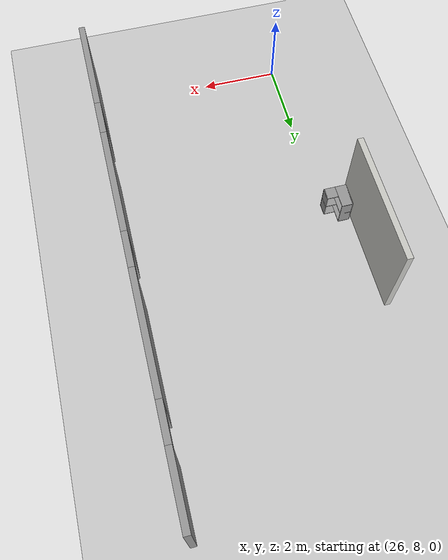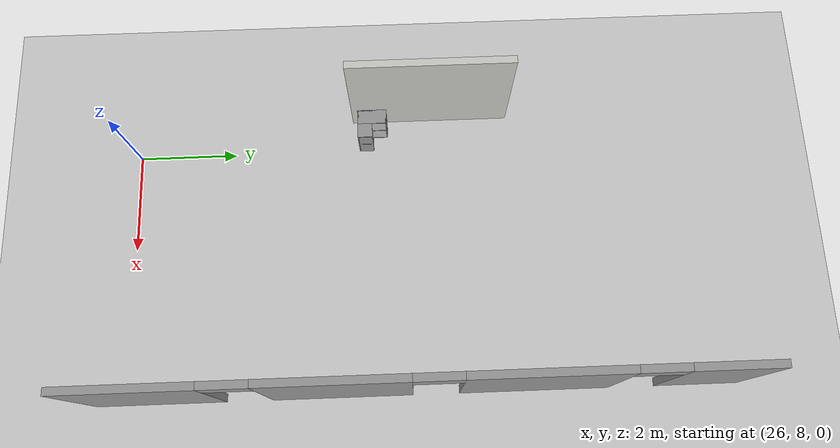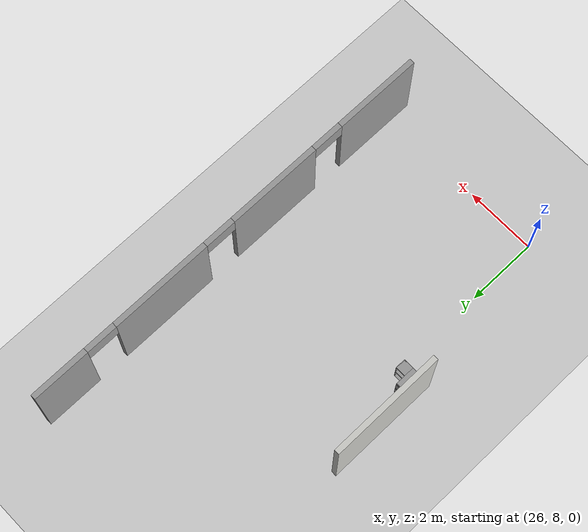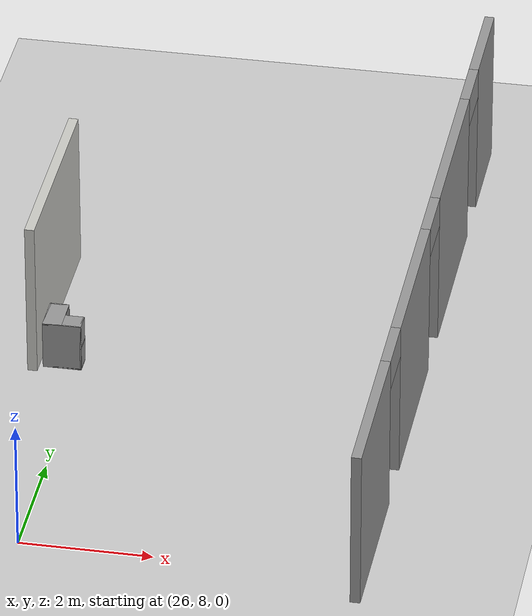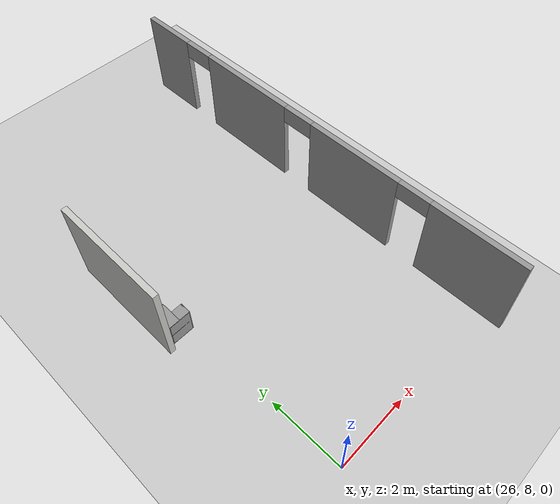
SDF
<sdf version="1.6">
 <world name="default">
  <model name="ground_plane">
   <static>1</static>
   <link name="link">
    <collision name="collision">
     <geometry><plane><normal>0 0 1</normal><size>100 100</size></plane></geometry>
     <surface>
      <contact><collide_bitmask>65535</collide_bitmask></contact>
      <friction><ode><mu>100</mu><mu2>50</mu2></ode></friction>
     </surface>
    </collision>
    <visual name="visual">
     <cast_shadows>0</cast_shadows>
     <geometry><plane><normal>0 0 1</normal><size>100 100</size></plane></geometry>
     <material>
      <script><uri>file://media/materials/scripts/gazebo.material</uri><name>Gazebo/Grey</name></script>
     </material>
    </visual>
   </link>
  </model>
  <model name="firstFloor">
   <pose>-0.116512 3.07366 0 0 -0 0</pose>
   <link name="Wall_16">
    <pose>31.1734 10.582 0 0 0 -1.5708</pose>
    <visual name="Wall_16_Visual_0">
     <pose>-5.43447 0 1.25 0 -0 0</pose>
     <geometry><box><size>1.63106 0.15 2.5</size></box></geometry>
     <material>
      <script><uri>file://media/materials/scripts/gazebo.material</uri><name>Gazebo/Grey</name></script>
      <ambient>1 1 1 1</ambient>
     </material>
     <meta><layer>0</layer></meta>
    </visual>
    <collision name="Wall_16_Collision_0">
     <geometry><box><size>1.63106 0.15 2.5</size></box></geometry>
     <pose>-5.43447 0 1.25 0 -0 0</pose>
    </collision>
    <visual name="Wall_16_Visual_1">
     <pose>-2.26346 0 1.25 0 -0 0</pose>
     <geometry><box><size>2.91096 0.15 2.5</size></box></geometry>
     <material>
      <script><uri>file://media/materials/scripts/gazebo.material</uri><name>Gazebo/Grey</name></script>
      <ambient>1 1 1 1</ambient>
     </material>
     <meta><layer>0</layer></meta>
    </visual>
    <collision name="Wall_16_Collision_1">
     <geometry><box><size>2.91096 0.15 2.5</size></box></geometry>
     <pose>-2.26346 0 1.25 0 -0 0</pose>
    </collision>
    <visual name="Wall_16_Visual_2">
     <pose>1.45677 0 1.25 0 -0 0</pose>
     <geometry><box><size>2.72949 0.15 2.5</size></box></geometry>
     <material>
      <script><uri>file://media/materials/scripts/gazebo.material</uri><name>Gazebo/Grey</name></script>
      <ambient>1 1 1 1</ambient>
     </material>
     <meta><layer>0</layer></meta>
    </visual>
    <collision name="Wall_16_Collision_2">
     <geometry><box><size>2.72949 0.15 2.5</size></box></geometry>
     <pose>1.45677 0 1.25 0 -0 0</pose>
    </collision>
    <visual name="Wall_16_Visual_3">
     <pose>4.98576 0 1.25 0 -0 0</pose>
     <geometry><box><size>2.52848 0.15 2.5</size></box></geometry>
     <material>
      <script><uri>file://media/materials/scripts/gazebo.material</uri><name>Gazebo/Grey</name></script>
      <ambient>1 1 1 1</ambient>
     </material>
     <meta><layer>0</layer></meta>
    </visual>
    <collision name="Wall_16_Collision_3">
     <geometry><box><size>2.52848 0.15 2.5</size></box></geometry>
     <pose>4.98576 0 1.25 0 -0 0</pose>
    </collision>
    <visual name="Wall_16_Visual_4">
     <pose>-4.16894 0 2.25 0 -0 0</pose>
     <geometry><box><size>0.9 0.15 0.5</size></box></geometry>
     <material>
      <script><uri>file://media/materials/scripts/gazebo.material</uri><name>Gazebo/Grey</name></script>
      <ambient>1 1 1 1</ambient>
     </material>
     <meta><layer>0</layer></meta>
    </visual>
    <collision name="Wall_16_Collision_4">
     <geometry><box><size>0.9 0.15 0.5</size></box></geometry>
     <pose>-4.16894 0 2.25 0 -0 0</pose>
    </collision>
    <visual name="Wall_16_Visual_5">
     <pose>-0.357975 0 2.25 0 -0 0</pose>
     <geometry><box><size>0.9 0.15 0.5</size></box></geometry>
     <material>
      <script><uri>file://media/materials/scripts/gazebo.material</uri><name>Gazebo/Grey</name></script>
      <ambient>1 1 1 1</ambient>
     </material>
     <meta><layer>0</layer></meta>
    </visual>
    <collision name="Wall_16_Collision_5">
     <geometry><box><size>0.9 0.15 0.5</size></box></geometry>
     <pose>-0.357975 0 2.25 0 -0 0</pose>
    </collision>
    <visual name="Wall_16_Visual_6">
     <pose>3.27151 0 2.25 0 -0 0</pose>
     <geometry><box><size>0.9 0.15 0.5</size></box></geometry>
     <material>
      <script><uri>file://media/materials/scripts/gazebo.material</uri><name>Gazebo/Grey</name></script>
      <ambient>1 1 1 1</ambient>
     </material>
     <meta><layer>0</layer></meta>
    </visual>
    <collision name="Wall_16_Collision_6">
     <geometry><box><size>0.9 0.15 0.5</size></box></geometry>
     <pose>3.27151 0 2.25 0 -0 0</pose>
    </collision>
   </link>
   <link name="Wall_25">
    <collision name="Wall_25_Collision">
     <geometry><box><size>3.25 0.15 2.5</size></box></geometry>
     <pose>0 0 1.25 0 -0 0</pose>
    </collision>
    <visual name="Wall_25_Visual">
     <pose>0 0 1.25 0 -0 0</pose>
     <geometry><box><size>3.25 0.15 2.5</size></box></geometry>
     <material>
      <script><uri>file://media/materials/scripts/gazebo.material</uri><name>Gazebo/CeilingTiled</name></script>
      <ambient>1 1 1 1</ambient>
     </material>
     <meta><layer>0</layer></meta>
    </visual>
    <pose>25.3762 11.0335 0 0 0 -1.5708</pose>
   </link>
   <static>1</static>
  </model>
  <model name="Wall_Cabinet_Coin_24x30W">
   <link name="Wall_10">
    <pose>0.286 -0.148 0.384 0 -0 0</pose>
    <inertial>
     <mass>2.1259</mass>
     <inertia><ixx>0.0158</ixx><iyy>0.1202</iyy><izz>0.1046</izz><ixy>0</ixy><ixz>0</ixz><iyz>0</iyz></inertia>
    </inertial>
    <collision name="Wall_10_Collision"><geometry><box><size>0.02 0.296 0.768</size></box></geometry></collision>
    <visual name="Wall_10_Visual">
     <geometry><box><size>0.02 0.296 0.768</size></box></geometry>
     <material>
      <script><uri>file://media/materials/scripts/gazebo.material</uri><name>Gazebo/Grey</name></script>
      <ambient>1 1 1 1</ambient>
     </material>
    </visual>
   </link>
   <joint name="10_16" type="fixed">
    <pose>0 0 -0.374 0 -0 0</pose>
    <parent>Wall_16</parent>
    <child>Wall_10</child>
    <axis>
     <xyz>1 0 0</xyz>
     <use_parent_model_frame>0</use_parent_model_frame>
     <limit><lower>-1e+16</lower><upper>1e+16</upper></limit>
    </axis>
   </joint>
   <joint name="10_14" type="fixed">
    <parent>Wall_14</parent>
    <child>Wall_10</child>
    <axis>
     <xyz>1 0 0</xyz>
     <use_parent_model_frame>0</use_parent_model_frame>
     <limit><lower>-1e+16</lower><upper>1e+16</upper></limit>
    </axis>
   </joint>
   <joint name="10_12" type="fixed">
    <pose>0 0 0.374 0 -0 0</pose>
    <parent>Wall_12</parent>
    <child>Wall_10</child>
    <axis>
     <xyz>1 0 0</xyz>
     <use_parent_model_frame>0</use_parent_model_frame>
     <limit><lower>-1e+16</lower><upper>1e+16</upper></limit>
    </axis>
   </joint>
   <joint name="10_29" type="fixed">
    <pose>0 -0.148 0 0 -0 0</pose>
    <parent>Wall_29</parent>
    <child>Wall_10</child>
    <axis>
     <xyz>1 0 0</xyz>
     <use_parent_model_frame>0</use_parent_model_frame>
     <limit><lower>-1e+16</lower><upper>1e+16</upper></limit>
    </axis>
   </joint>
   <link name="Wall_12">
    <pose>0.148 -0.148 0.758 0 -0 0</pose>
    <inertial>
     <mass>0.8802</mass>
     <inertia><ixx>0.0065</ixx><iyy>0.0139</iyy><izz>0.0074</izz><ixy>0</ixy><ixz>0</ixz><iyz>0</iyz></inertia>
    </inertial>
    <collision name="Wall_12_Collision"><geometry><box><size>0.296 0.296 0.02</size></box></geometry></collision>
    <visual name="Wall_12_Visual">
     <geometry><box><size>0.296 0.296 0.02</size></box></geometry>
     <material>
      <script><uri>file://media/materials/scripts/gazebo.material</uri><name>Gazebo/Grey</name></script>
      <ambient>1 1 1 1</ambient>
     </material>
    </visual>
   </link>
   <joint name="12_29" type="fixed">
    <pose>0 -0.148 0 0 -0 0</pose>
    <parent>Wall_29</parent>
    <child>Wall_12</child>
    <axis>
     <xyz>0 0 1</xyz>
     <use_parent_model_frame>0</use_parent_model_frame>
     <limit><lower>-1e+16</lower><upper>1e+16</upper></limit>
    </axis>
   </joint>
   <link name="Wall_14">
    <pose>0.148 -0.148 0.384 0 -0 0</pose>
    <inertial>
     <mass>0.8802</mass>
     <inertia><ixx>0.0065</ixx><iyy>0.0139</iyy><izz>0.0074</izz><ixy>0</ixy><ixz>0</ixz><iyz>0</iyz></inertia>
    </inertial>
    <collision name="Wall_14_Collision"><geometry><box><size>0.296 0.296 0.02</size></box></geometry></collision>
    <visual name="Wall_14_Visual">
     <geometry><box><size>0.296 0.296 0.02</size></box></geometry>
     <material>
      <script><uri>file://media/materials/scripts/gazebo.material</uri><name>Gazebo/Grey</name></script>
      <ambient>1 1 1 1</ambient>
     </material>
    </visual>
   </link>
   <joint name="14_29" type="fixed">
    <pose>0 -0.148 0 0 -0 0</pose>
    <parent>Wall_29</parent>
    <child>Wall_14</child>
    <axis>
     <xyz>0 1 0</xyz>
     <use_parent_model_frame>0</use_parent_model_frame>
     <limit><lower>-1e+16</lower><upper>1e+16</upper></limit>
    </axis>
   </joint>
   <link name="Wall_16">
    <pose>0.148 -0.148 0.01 0 -0 0</pose>
    <inertial>
     <mass>0.8802</mass>
     <inertia><ixx>0.0065</ixx><iyy>0.0139</iyy><izz>0.0074</izz><ixy>0</ixy><ixz>0</ixz><iyz>0</iyz></inertia>
    </inertial>
    <collision name="Wall_16_Collision"><geometry><box><size>0.296 0.296 0.02</size></box></geometry></collision>
    <visual name="Wall_16_Visual">
     <geometry><box><size>0.296 0.296 0.02</size></box></geometry>
     <material>
      <script><uri>file://media/materials/scripts/gazebo.material</uri><name>Gazebo/Grey</name></script>
      <ambient>1 1 1 1</ambient>
     </material>
    </visual>
   </link>
   <joint name="16_29" type="fixed">
    <pose>0 -0.148 0 0 -0 0</pose>
    <parent>Wall_29</parent>
    <child>Wall_16</child>
    <axis>
     <xyz>0 1 0</xyz>
     <use_parent_model_frame>0</use_parent_model_frame>
     <limit><lower>-1e+16</lower><upper>1e+16</upper></limit>
    </axis>
   </joint>
   <link name="Wall_18">
    <pose>-0.148 0 0.01 0 -0 0</pose>
    <inertial>
     <mass>1.6525</mass>
     <inertia><ixx>0.0491</ixx><iyy>0.0613</iyy><izz>0.0123</izz><ixy>0</ixy><ixz>0</ixz><iyz>0</iyz></inertia>
    </inertial>
    <collision name="Wall_18_Collision"><geometry><box><size>0.296 0.592 0.02</size></box></geometry></collision>
    <visual name="Wall_18_Visual">
     <geometry><box><size>0.296 0.592 0.02</size></box></geometry>
     <material>
      <script><uri>file://media/materials/scripts/gazebo.material</uri><name>Gazebo/Grey</name></script>
      <ambient>1 1 1 1</ambient>
     </material>
    </visual>
   </link>
   <joint name="18_16" type="fixed">
    <pose>0.148 -0.148 0 0 -0 0</pose>
    <parent>Wall_16</parent>
    <child>Wall_18</child>
    <axis>
     <xyz>1 0 0</xyz>
     <use_parent_model_frame>0</use_parent_model_frame>
     <limit><lower>-1e+16</lower><upper>1e+16</upper></limit>
    </axis>
   </joint>
   <joint name="18_29" type="fixed">
    <pose>0 -0.296 0 0 -0 0</pose>
    <parent>Wall_29</parent>
    <child>Wall_18</child>
    <axis>
     <xyz>0 1 0</xyz>
     <use_parent_model_frame>0</use_parent_model_frame>
     <limit><lower>-1e+16</lower><upper>1e+16</upper></limit>
    </axis>
   </joint>
   <joint name="18_27" type="fixed">
    <pose>-0.148 0 0 0 -0 0</pose>
    <parent>Wall_27</parent>
    <child>Wall_18</child>
    <axis>
     <xyz>1 0 0</xyz>
     <use_parent_model_frame>0</use_parent_model_frame>
     <limit><lower>-1e+16</lower><upper>1e+16</upper></limit>
    </axis>
   </joint>
   <joint name="18_30" type="fixed">
    <pose>0 0.296 0 0 -0 0</pose>
    <parent>Wall_30</parent>
    <child>Wall_18</child>
    <axis>
     <xyz>0 1 0</xyz>
     <use_parent_model_frame>0</use_parent_model_frame>
     <limit><lower>-1e+16</lower><upper>1e+16</upper></limit>
    </axis>
   </joint>
   <link name="Wall_20">
    <pose>-0.148 0 0.384 0 -0 0</pose>
    <inertial>
     <mass>1.6525</mass>
     <inertia><ixx>0.0491</ixx><iyy>0.0613</iyy><izz>0.0123</izz><ixy>0</ixy><ixz>0</ixz><iyz>0</iyz></inertia>
    </inertial>
    <collision name="Wall_20_Collision"><geometry><box><size>0.296 0.592 0.02</size></box></geometry></collision>
    <visual name="Wall_20_Visual">
     <geometry><box><size>0.296 0.592 0.02</size></box></geometry>
     <material>
      <script><uri>file://media/materials/scripts/gazebo.material</uri><name>Gazebo/Grey</name></script>
      <ambient>1 1 1 1</ambient>
     </material>
    </visual>
   </link>
   <joint name="20_14" type="fixed">
    <pose>0.148 -0.148 0 0 -0 0</pose>
    <parent>Wall_14</parent>
    <child>Wall_20</child>
    <axis>
     <xyz>1 0 0</xyz>
     <use_parent_model_frame>0</use_parent_model_frame>
     <limit><lower>-1e+16</lower><upper>1e+16</upper></limit>
    </axis>
   </joint>
   <joint name="20_29" type="fixed">
    <pose>0 -0.296 0 0 -0 0</pose>
    <parent>Wall_29</parent>
    <child>Wall_20</child>
    <axis>
     <xyz>0 1 0</xyz>
     <use_parent_model_frame>0</use_parent_model_frame>
     <limit><lower>-1e+16</lower><upper>1e+16</upper></limit>
    </axis>
   </joint>
   <joint name="20_27" type="fixed">
    <pose>-0.148 0 0 0 -0 0</pose>
    <parent>Wall_27</parent>
    <child>Wall_20</child>
    <axis>
     <xyz>1 0 0</xyz>
     <use_parent_model_frame>0</use_parent_model_frame>
     <limit><lower>-1e+16</lower><upper>1e+16</upper></limit>
    </axis>
   </joint>
   <joint name="20_30" type="fixed">
    <pose>0 0.296 0 0 -0 0</pose>
    <parent>Wall_30</parent>
    <child>Wall_20</child>
    <axis>
     <xyz>0 1 0</xyz>
     <use_parent_model_frame>0</use_parent_model_frame>
     <limit><lower>-1e+16</lower><upper>1e+16</upper></limit>
    </axis>
   </joint>
   <link name="Wall_22">
    <pose>-0.148 0 0.758 0 -0 0</pose>
    <inertial>
     <mass>1.6525</mass>
     <inertia><ixx>0.0491</ixx><iyy>0.0613</iyy><izz>0.0123</izz><ixy>0</ixy><ixz>0</ixz><iyz>0</iyz></inertia>
    </inertial>
    <collision name="Wall_22_Collision"><geometry><box><size>0.296 0.592 0.02</size></box></geometry></collision>
    <visual name="Wall_22_Visual">
     <geometry><box><size>0.296 0.592 0.02</size></box></geometry>
     <material>
      <script><uri>file://media/materials/scripts/gazebo.material</uri><name>Gazebo/Grey</name></script>
      <ambient>1 1 1 1</ambient>
     </material>
    </visual>
   </link>
   <joint name="22_12" type="fixed">
    <pose>0.148 -0.148 0 0 -0 0</pose>
    <parent>Wall_12</parent>
    <child>Wall_22</child>
    <axis>
     <xyz>1 0 0</xyz>
     <use_parent_model_frame>0</use_parent_model_frame>
     <limit><lower>-1e+16</lower><upper>1e+16</upper></limit>
    </axis>
   </joint>
   <joint name="22_29" type="fixed">
    <pose>0 -0.296 0 0 -0 0</pose>
    <parent>Wall_29</parent>
    <child>Wall_22</child>
    <axis>
     <xyz>0 1 0</xyz>
     <use_parent_model_frame>0</use_parent_model_frame>
     <limit><lower>-1e+16</lower><upper>1e+16</upper></limit>
    </axis>
   </joint>
   <joint name="22_27" type="fixed">
    <pose>-0.148 0 0 0 -0 0</pose>
    <parent>Wall_27</parent>
    <child>Wall_22</child>
    <axis>
     <xyz>1 0 0</xyz>
     <use_parent_model_frame>0</use_parent_model_frame>
     <limit><lower>-1e+16</lower><upper>1e+16</upper></limit>
    </axis>
   </joint>
   <joint name="22_30" type="fixed">
    <pose>0 0.296 0 0 -0 0</pose>
    <parent>Wall_30</parent>
    <child>Wall_22</child>
    <axis>
     <xyz>0 1 0</xyz>
     <use_parent_model_frame>0</use_parent_model_frame>
     <limit><lower>-1e+16</lower><upper>1e+16</upper></limit>
    </axis>
   </joint>
   <link name="Wall_27">
    <pose>-0.286 0 0.384 0 -0 0</pose>
    <inertial>
     <mass>4.2589</mass>
     <inertia><ixx>0.1266</ixx><iyy>0.3358</iyy><izz>0.2095</izz><ixy>0</ixy><ixz>0</ixz><iyz>0</iyz></inertia>
    </inertial>
    <collision name="Wall_27_Collision"><geometry><box><size>0.02 0.592 0.768</size></box></geometry></collision>
    <visual name="Wall_27_Visual">
     <geometry><box><size>0.02 0.592 0.768</size></box></geometry>
     <material>
      <script><uri>file://media/materials/scripts/gazebo.material</uri><name>Gazebo/Grey</name></script>
      <ambient>1 1 1 1</ambient>
     </material>
    </visual>
   </link>
   <joint name="27_30" type="fixed">
    <pose>0 0.296 0 0 -0 0</pose>
    <parent>Wall_30</parent>
    <child>Wall_27</child>
    <axis>
     <xyz>0 1 0</xyz>
     <use_parent_model_frame>0</use_parent_model_frame>
     <limit><lower>-1e+16</lower><upper>1e+16</upper></limit>
    </axis>
   </joint>
   <link name="Wall_29">
    <pose>0 -0.286 0.384 0 -0 0</pose>
    <inertial>
     <mass>4.3176</mass>
     <inertia><ixx>0.134</ixx><iyy>0.2091</iyy><izz>0.3428</izz><ixy>0</ixy><ixz>0</ixz><iyz>0</iyz></inertia>
    </inertial>
    <collision name="Wall_29_Collision"><geometry><box><size>0.592 0.02 0.768</size></box></geometry></collision>
    <visual name="Wall_29_Visual">
     <geometry><box><size>0.592 0.02 0.768</size></box></geometry>
     <material>
      <script><uri>file://media/materials/scripts/gazebo.material</uri><name>Gazebo/Grey</name></script>
      <ambient>1 1 1 1</ambient>
     </material>
    </visual>
   </link>
   <link name="Wall_30">
    <pose>-0.148 0.286 0.384 0 -0 0</pose>
    <inertial>
     <mass>2.1093</mass>
     <inertia><ixx>0.1021</ixx><iyy>0.0157</iyy><izz>0.1177</izz><ixy>0</ixy><ixz>0</ixz><iyz>0</iyz></inertia>
    </inertial>
    <collision name="Wall_30_Collision"><geometry><box><size>0.296 0.02 0.768</size></box></geometry></collision>
    <visual name="Wall_30_Visual">
     <geometry><box><size>0.296 0.02 0.768</size></box></geometry>
     <material>
      <script><uri>file://media/materials/scripts/gazebo.material</uri><name>Gazebo/Grey</name></script>
      <ambient>1 1 1 1</ambient>
     </material>
    </visual>
   </link>
   <static>1</static>
   <pose>25.6901 12.9121 0 0 -0 0</pose>
  </model>
 </world>
</sdf>
